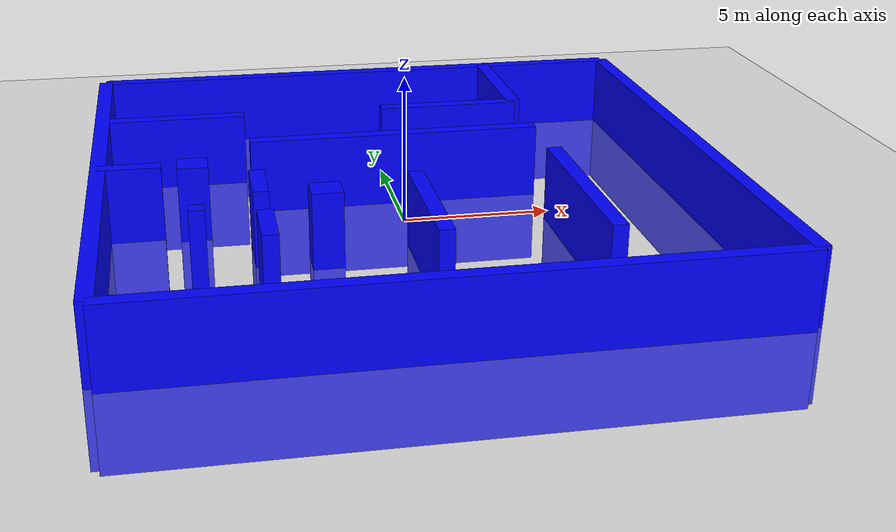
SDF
<sdf version="1.8">
 <world name="jetracer_world">
  <physics name="default_physics" type="ode">
   <max_step_size>0.001</max_step_size>
   <real_time_factor>1.0</real_time_factor>
   <real_time_update_rate>1000</real_time_update_rate>
   <solver>
    <type>quick</type>
    <iters>500</iters>
    <precon_iters>50</precon_iters>
    <sor>1.3</sor>
    <use_dynamic_moi_rescaling>true</use_dynamic_moi_rescaling>
   </solver>
   <constraints><cfm>1e-5</cfm><erp>0.8</erp></constraints>
  </physics>
  <plugin filename="libignition-gazebo-physics-system.so" name="ignition::gazebo::systems::Physics">
   <calculate_inertial>true</calculate_inertial>
  </plugin>
  <plugin filename="libignition-gazebo-user-commands-system.so" name="ignition::gazebo::systems::UserCommands"/>
  <plugin filename="libignition-gazebo-scene-broadcaster-system.so" name="ignition::gazebo::systems::SceneBroadcaster"/>
  <light type="directional" name="sun">
   <pose>0 0 10 0 0 0</pose>
   <diffuse>0.8 0.8 0.8 1</diffuse>
   <specular>0.2 0.2 0.2 1</specular>
   <attenuation>
    <range>1000</range>
    <constant>0.9</constant>
    <linear>0.01</linear>
    <quadratic>0.001</quadratic>
   </attenuation>
   <direction>-0.5 0.1 -0.9</direction>
  </light>
  <model name="ground_plane">
   <static>true</static>
   <link name="link">
    <collision name="collision">
     <geometry><plane><normal>0 0 1</normal></plane></geometry>
     <surface>
      <friction><ode><mu>10.0</mu><mu2>5.0</mu2></ode></friction>
      <bounce><restitution_coefficient>0.0</restitution_coefficient></bounce>
     </surface>
    </collision>
    <visual name="visual">
     <geometry><plane><normal>0 0 1</normal><size>30 30</size></plane></geometry>
     <material>
      <ambient>0.8 0.8 0.8 1</ambient>
      <diffuse>0.8 0.8 0.8 1</diffuse>
      <specular>0.8 0.8 0.8 1</specular>
     </material>
    </visual>
   </link>
  </model>
  <plugin filename="libignition-gazebo-contact-system.so" name="ignition::gazebo::systems::Contact"/>
  <plugin filename="libignition-gazebo-imu-system.so" name="ignition::gazebo::systems::Imu"/>
  <plugin filename="libignition-gazebo-sensors-system.so" name="ignition::gazebo::systems::Sensors">
   <render_engine>ogre2</render_engine>
  </plugin>
  <model name="wall1">
   <static>true</static>
   <pose>10.0 0 0 0 0 0</pose>
   <plugin filename="libignition-gazebo-touchplugin-system.so" name="ignition::gazebo::systems::TouchPlugin">
    <target>Jetracer</target>
    <namespace>wall</namespace>
    <time>0.001</time>
    <enabled>true</enabled>
   </plugin>
   <link name="box">
    <sensor name="sensor_contact" type="contact"><contact><collision>collision</collision></contact></sensor>
    <visual name="visual">
     <geometry><box><size>0.5 20.0 5.0</size></box></geometry>
     <material>
      <ambient>0.0 0.0 1.0 1</ambient>
      <diffuse>0.0 0.0 1.0 1</diffuse>
      <specular>0.0 0.0 1.0 1</specular>
     </material>
    </visual>
    <collision name="collision"><geometry><box><size>0.5 20.0 5.0</size></box></geometry></collision>
   </link>
  </model>
  <model name="wall2">
   <static>true</static>
   <pose>-10.0 0 0 0 0 0</pose>
   <plugin filename="libignition-gazebo-touchplugin-system.so" name="ignition::gazebo::systems::TouchPlugin">
    <target>Jetracer</target>
    <namespace>wall</namespace>
    <time>0.001</time>
    <enabled>true</enabled>
   </plugin>
   <link name="box">
    <sensor name="sensor_contact" type="contact"><contact><collision>collision</collision></contact></sensor>
    <visual name="visual">
     <geometry><box><size>0.5 20.0 5.0</size></box></geometry>
     <material>
      <ambient>0.0 0.0 1.0 1</ambient>
      <diffuse>0.0 0.0 1.0 1</diffuse>
      <specular>0.0 0.0 1.0 1</specular>
     </material>
    </visual>
    <collision name="collision"><geometry><box><size>0.5 20.0 5.0</size></box></geometry></collision>
   </link>
  </model>
  <model name="wall3">
   <static>true</static>
   <pose>0.0 10.0 0 0 0 -1.57</pose>
   <plugin filename="libignition-gazebo-touchplugin-system.so" name="ignition::gazebo::systems::TouchPlugin">
    <target>Jetracer</target>
    <namespace>wall</namespace>
    <time>0.001</time>
    <enabled>true</enabled>
   </plugin>
   <link name="box">
    <sensor name="sensor_contact" type="contact"><contact><collision>collision</collision></contact></sensor>
    <visual name="visual">
     <geometry><box><size>0.5 20.0 5.0</size></box></geometry>
     <material>
      <ambient>0.0 0.0 1.0 1</ambient>
      <diffuse>0.0 0.0 1.0 1</diffuse>
      <specular>0.0 0.0 1.0 1</specular>
     </material>
    </visual>
    <collision name="collision"><geometry><box><size>0.5 20.0 5.0</size></box></geometry></collision>
   </link>
  </model>
  <model name="wall4">
   <static>true</static>
   <pose>0.0 -10.0 0 0 0 -1.57</pose>
   <plugin filename="libignition-gazebo-touchplugin-system.so" name="ignition::gazebo::systems::TouchPlugin">
    <target>Jetracer</target>
    <namespace>wall</namespace>
    <time>0.001</time>
    <enabled>true</enabled>
   </plugin>
   <link name="box">
    <sensor name="sensor_contact" type="contact"><contact><collision>collision</collision></contact></sensor>
    <visual name="visual">
     <geometry><box><size>0.5 20.0 5.0</size></box></geometry>
     <material>
      <ambient>0.0 0.0 1.0 1</ambient>
      <diffuse>0.0 0.0 1.0 1</diffuse>
      <specular>0.0 0.0 1.0 1</specular>
     </material>
    </visual>
    <collision name="collision"><geometry><box><size>0.5 20.0 5.0</size></box></geometry></collision>
   </link>
  </model>
  <model name="wall5">
   <static>true</static>
   <pose>5.0 7.5 0 0 0 0</pose>
   <plugin filename="libignition-gazebo-touchplugin-system.so" name="ignition::gazebo::systems::TouchPlugin">
    <target>Jetracer</target>
    <namespace>wall</namespace>
    <time>0.001</time>
    <enabled>true</enabled>
   </plugin>
   <link name="box">
    <sensor name="sensor_contact" type="contact"><contact><collision>collision</collision></contact></sensor>
    <visual name="visual">
     <geometry><box><size>0.5 5.0 5.0</size></box></geometry>
     <material>
      <ambient>0.0 0.0 1.0 1</ambient>
      <diffuse>0.0 0.0 1.0 1</diffuse>
      <specular>0.0 0.0 1.0 1</specular>
     </material>
    </visual>
    <collision name="collision"><geometry><box><size>0.5 5.0 5.0</size></box></geometry></collision>
   </link>
  </model>
  <model name="wall6">
   <static>true</static>
   <pose>2.5 5.0 0 0 0 1.57</pose>
   <plugin filename="libignition-gazebo-touchplugin-system.so" name="ignition::gazebo::systems::TouchPlugin">
    <target>Jetracer</target>
    <namespace>wall</namespace>
    <time>0.001</time>
    <enabled>true</enabled>
   </plugin>
   <link name="box">
    <sensor name="sensor_contact" type="contact"><contact><collision>collision</collision></contact></sensor>
    <visual name="visual">
     <geometry><box><size>0.5 5.0 5.0</size></box></geometry>
     <material>
      <ambient>0.0 0.0 1.0 1</ambient>
      <diffuse>0.0 0.0 1.0 1</diffuse>
      <specular>0.0 0.0 1.0 1</specular>
     </material>
    </visual>
    <collision name="collision"><geometry><box><size>0.5 5.0 5.0</size></box></geometry></collision>
   </link>
  </model>
  <model name="wall7">
   <static>true</static>
   <pose>0 2 0 0 0 1.57</pose>
   <plugin filename="libignition-gazebo-touchplugin-system.so" name="ignition::gazebo::systems::TouchPlugin">
    <target>Jetracer</target>
    <namespace>wall</namespace>
    <time>0.001</time>
    <enabled>true</enabled>
   </plugin>
   <link name="box">
    <sensor name="sensor_contact" type="contact"><contact><collision>collision</collision></contact></sensor>
    <visual name="visual">
     <geometry><box><size>0.5 10.0 5.0</size></box></geometry>
     <material>
      <ambient>0.0 0.0 1.0 1</ambient>
      <diffuse>0.0 0.0 1.0 1</diffuse>
      <specular>0.0 0.0 1.0 1</specular>
     </material>
    </visual>
    <collision name="collision"><geometry><box><size>0.5 10.0 5.0</size></box></geometry></collision>
   </link>
  </model>
  <model name="wall8">
   <static>true</static>
   <pose>-7.5 5.0 0 0 0 1.57</pose>
   <plugin filename="libignition-gazebo-touchplugin-system.so" name="ignition::gazebo::systems::TouchPlugin">
    <target>Jetracer</target>
    <namespace>wall</namespace>
    <time>0.001</time>
    <enabled>true</enabled>
   </plugin>
   <link name="box">
    <sensor name="sensor_contact" type="contact"><contact><collision>collision</collision></contact></sensor>
    <visual name="visual">
     <geometry><box><size>0.5 5.0 5.0</size></box></geometry>
     <material>
      <ambient>0.0 0.0 1.0 1</ambient>
      <diffuse>0.0 0.0 1.0 1</diffuse>
      <specular>0.0 0.0 1.0 1</specular>
     </material>
    </visual>
    <collision name="collision"><geometry><box><size>0.5 5.0 5.0</size></box></geometry></collision>
   </link>
  </model>
  <model name="wall9">
   <static>true</static>
   <pose>-5 -2 0 0 0 0</pose>
   <plugin filename="libignition-gazebo-touchplugin-system.so" name="ignition::gazebo::systems::TouchPlugin">
    <target>Jetracer</target>
    <namespace>wall</namespace>
    <time>0.001</time>
    <enabled>true</enabled>
   </plugin>
   <link name="box">
    <sensor name="sensor_contact" type="contact"><contact><collision>collision</collision></contact></sensor>
    <visual name="visual">
     <geometry><box><size>0.5 2.0 5.0</size></box></geometry>
     <material>
      <ambient>0.0 0.0 1.0 1</ambient>
      <diffuse>0.0 0.0 1.0 1</diffuse>
      <specular>0.0 0.0 1.0 1</specular>
     </material>
    </visual>
    <collision name="collision"><geometry><box><size>0.5 2.0 5.0</size></box></geometry></collision>
   </link>
  </model>
  <model name="wall10">
   <static>true</static>
   <pose>-9 0 0 0 0 1.57</pose>
   <plugin filename="libignition-gazebo-touchplugin-system.so" name="ignition::gazebo::systems::TouchPlugin">
    <target>Jetracer</target>
    <namespace>wall</namespace>
    <time>0.001</time>
    <enabled>true</enabled>
   </plugin>
   <link name="box">
    <sensor name="sensor_contact" type="contact"><contact><collision>collision</collision></contact></sensor>
    <visual name="visual">
     <geometry><box><size>0.5 2.0 5.0</size></box></geometry>
     <material>
      <ambient>0.0 0.0 1.0 1</ambient>
      <diffuse>0.0 0.0 1.0 1</diffuse>
      <specular>0.0 0.0 1.0 1</specular>
     </material>
    </visual>
    <collision name="collision"><geometry><box><size>0.5 2.0 5.0</size></box></geometry></collision>
   </link>
  </model>
  <model name="wall11">
   <static>true</static>
   <pose>5 -4 0 0 0 0</pose>
   <plugin filename="libignition-gazebo-touchplugin-system.so" name="ignition::gazebo::systems::TouchPlugin">
    <target>Jetracer</target>
    <namespace>wall</namespace>
    <time>0.001</time>
    <enabled>true</enabled>
   </plugin>
   <link name="box">
    <sensor name="sensor_contact" type="contact"><contact><collision>collision</collision></contact></sensor>
    <visual name="visual">
     <geometry><box><size>0.5 7.0 5.0</size></box></geometry>
     <material>
      <ambient>0.0 0.0 1.0 1</ambient>
      <diffuse>0.0 0.0 1.0 1</diffuse>
      <specular>0.0 0.0 1.0 1</specular>
     </material>
    </visual>
    <collision name="collision"><geometry><box><size>0.5 7.0 5.0</size></box></geometry></collision>
   </link>
  </model>
  <model name="wall12">
   <static>true</static>
   <pose>0 -4.5 0 0 0 0</pose>
   <plugin filename="libignition-gazebo-touchplugin-system.so" name="ignition::gazebo::systems::TouchPlugin">
    <target>Jetracer</target>
    <namespace>wall</namespace>
    <time>0.001</time>
    <enabled>true</enabled>
   </plugin>
   <link name="box">
    <sensor name="sensor_contact" type="contact"><contact><collision>collision</collision></contact></sensor>
    <visual name="visual">
     <geometry><box><size>0.5 5.0 5.0</size></box></geometry>
     <material>
      <ambient>0.0 0.0 1.0 1</ambient>
      <diffuse>0.0 0.0 1.0 1</diffuse>
      <specular>0.0 0.0 1.0 1</specular>
     </material>
    </visual>
    <collision name="collision"><geometry><box><size>0.5 5.0 5.0</size></box></geometry></collision>
   </link>
  </model>
  <model name="wall13">
   <static>true</static>
   <pose>-5 -5.5 0 0 0 0</pose>
   <plugin filename="libignition-gazebo-touchplugin-system.so" name="ignition::gazebo::systems::TouchPlugin">
    <target>Jetracer</target>
    <namespace>wall</namespace>
    <time>0.001</time>
    <enabled>true</enabled>
   </plugin>
   <link name="box">
    <sensor name="sensor_contact" type="contact"><contact><collision>collision</collision></contact></sensor>
    <visual name="visual">
     <geometry><box><size>0.5 2.0 5.0</size></box></geometry>
     <material>
      <ambient>0.0 0.0 1.0 1</ambient>
      <diffuse>0.0 0.0 1.0 1</diffuse>
      <specular>0.0 0.0 1.0 1</specular>
     </material>
    </visual>
    <collision name="collision"><geometry><box><size>0.5 2.0 5.0</size></box></geometry></collision>
   </link>
  </model>
  <model name="obs1">
   <static>true</static>
   <pose>-7 -4 0 0 0 0</pose>
   <plugin filename="libignition-gazebo-touchplugin-system.so" name="ignition::gazebo::systems::TouchPlugin">
    <target>Jetracer</target>
    <namespace>wall</namespace>
    <time>0.001</time>
    <enabled>true</enabled>
   </plugin>
   <link name="box">
    <sensor name="sensor_contact" type="contact"><contact><collision>collision</collision></contact></sensor>
    <visual name="visual">
     <geometry><box><size>0.5 0.5 5.0</size></box></geometry>
     <material>
      <ambient>0.0 0.0 1.0 1</ambient>
      <diffuse>0.0 0.0 1.0 1</diffuse>
      <specular>0.0 0.0 1.0 1</specular>
     </material>
    </visual>
    <collision name="collision"><geometry><box><size>0.5 0.5 5.0</size></box></geometry></collision>
   </link>
  </model>
  <model name="obs2">
   <static>true</static>
   <pose>-3 -3 0 0 0 0</pose>
   <plugin filename="libignition-gazebo-touchplugin-system.so" name="ignition::gazebo::systems::TouchPlugin">
    <target>Jetracer</target>
    <namespace>wall</namespace>
    <time>0.001</time>
    <enabled>true</enabled>
   </plugin>
   <link name="box">
    <sensor name="sensor_contact" type="contact"><contact><collision>collision</collision></contact></sensor>
    <visual name="visual">
     <geometry><box><size>1 1 5.0</size></box></geometry>
     <material>
      <ambient>0.0 0.0 1.0 1</ambient>
      <diffuse>0.0 0.0 1.0 1</diffuse>
      <specular>0.0 0.0 1.0 1</specular>
     </material>
    </visual>
    <collision name="collision"><geometry><box><size>1 1 5.0</size></box></geometry></collision>
   </link>
  </model>
  <model name="obs3">
   <static>true</static>
   <pose>-7 0 0 0 0 0</pose>
   <plugin filename="libignition-gazebo-touchplugin-system.so" name="ignition::gazebo::systems::TouchPlugin">
    <target>Jetracer</target>
    <namespace>wall</namespace>
    <time>0.001</time>
    <enabled>true</enabled>
   </plugin>
   <link name="box">
    <sensor name="sensor_contact" type="contact"><contact><collision>collision</collision></contact></sensor>
    <visual name="visual">
     <geometry><box><size>1 1 5.0</size></box></geometry>
     <material>
      <ambient>0.0 0.0 1.0 1</ambient>
      <diffuse>0.0 0.0 1.0 1</diffuse>
      <specular>0.0 0.0 1.0 1</specular>
     </material>
    </visual>
    <collision name="collision"><geometry><box><size>1 1 5.0</size></box></geometry></collision>
   </link>
  </model>
  <model name="target_marker">
   <pose>-7.5 -7.5 0.2 0 0 0</pose>
   <link name="link">
    <visual name="visual">
     <geometry><sphere><radius>0.2</radius></sphere></geometry>
     <material><ambient>1 0 0 1</ambient><diffuse>1 0 0 1</diffuse></material>
    </visual>
    <collision name="collision"><geometry><sphere><radius>0.2</radius></sphere></geometry></collision>
   </link>
  </model>
  <plugin filename="libignition-gazebo-triggered-publisher-system.so" name="ignition::gazebo::systems::TriggeredPublisher">
   <input type="ignition.msgs.Int32" topic="/keyboard/keypress"><match field="data">16777235</match></input>
   <output type="ignition.msgs.Twist" topic="/cmd_vel">linear: {x: 0.5}, angular: {z: 0.0}</output>
  </plugin>
  <plugin filename="libignition-gazebo-triggered-publisher-system.so" name="ignition::gazebo::systems::TriggeredPublisher">
   <input type="ignition.msgs.Int32" topic="/keyboard/keypress"><match field="data">16777237</match></input>
   <output type="ignition.msgs.Twist" topic="/cmd_vel">linear: {x: -0.5}, angular: {z: 0.0}</output>
  </plugin>
  <plugin filename="libignition-gazebo-triggered-publisher-system.so" name="ignition::gazebo::systems::TriggeredPublisher">
   <input type="ignition.msgs.Int32" topic="/keyboard/keypress"><match field="data">16777234</match></input>
   <output type="ignition.msgs.Twist" topic="/cmd_vel">linear: {x: 0.5}, angular: {z: 0.5}</output>
  </plugin>
  <plugin filename="libignition-gazebo-triggered-publisher-system.so" name="ignition::gazebo::systems::TriggeredPublisher">
   <input type="ignition.msgs.Int32" topic="/keyboard/keypress"><match field="data">16777236</match></input>
   <output type="ignition.msgs.Twist" topic="/cmd_vel">linear: {x: 0.5}, angular: {z: -0.5}</output>
  </plugin>
  <plugin filename="libignition-gazebo-triggered-publisher-system.so" name="ignition::gazebo::systems::TriggeredPublisher">
   <input type="ignition.msgs.Int32" topic="/keyboard/keypress"><match field="data">83</match></input>
   <output type="ignition.msgs.Twist" topic="/cmd_vel">linear: {x: 0.0}, angular: {z: 0.0}</output>
  </plugin>
  <plugin filename="libignition-gazebo-triggered-publisher-system.so" name="ignition::gazebo::systems::TriggeredPublisher">
   <input type="ignition.msgs.Boolean" topic="/wall/touched"><match>data: true</match></input>
   <output type="ignition.msgs.Twist" topic="/cmd_vel">linear: {x: 0.0}, angular: {z: 0.0}</output>
  </plugin>
 </world>
</sdf>
